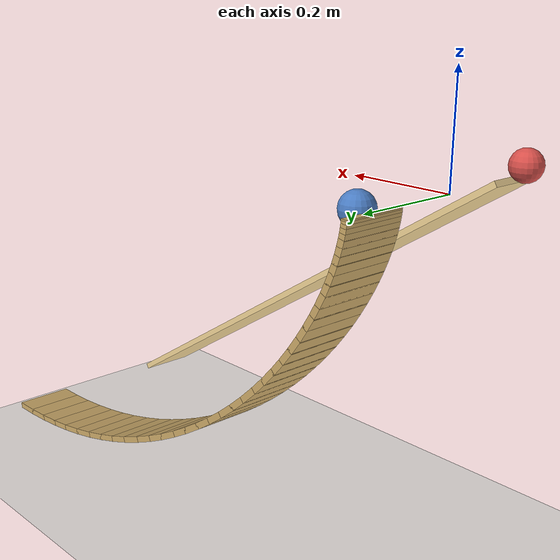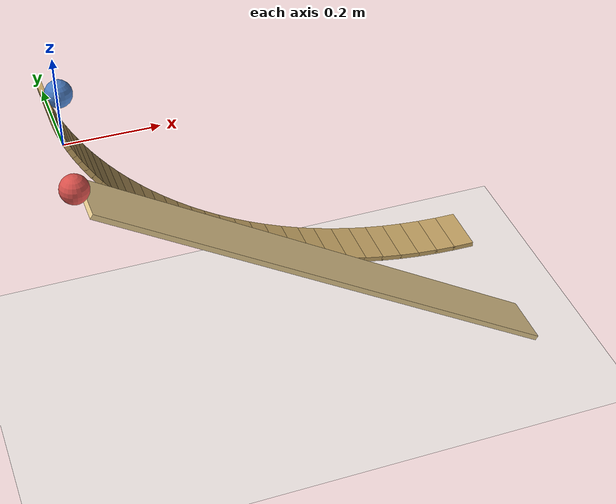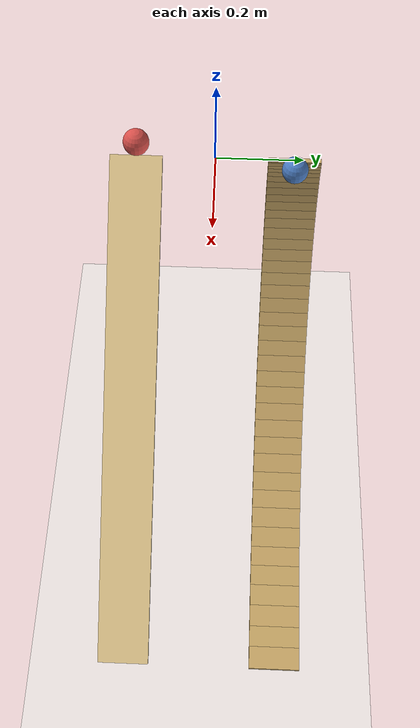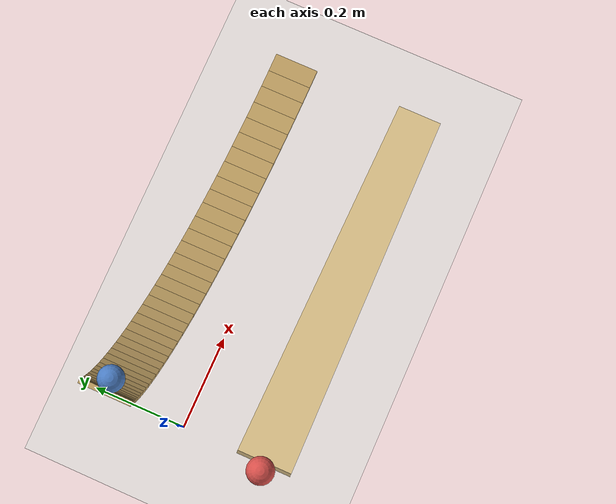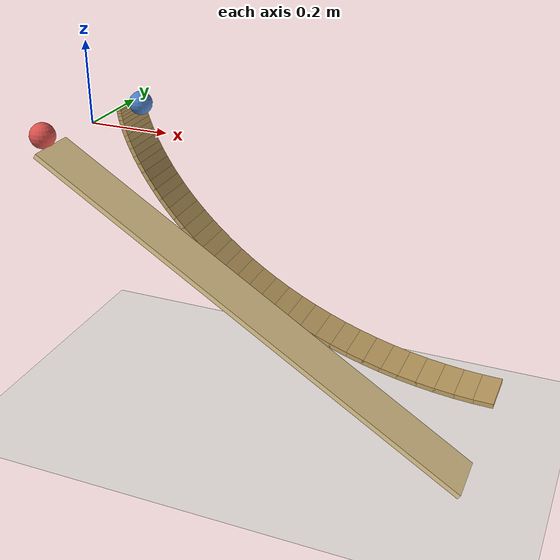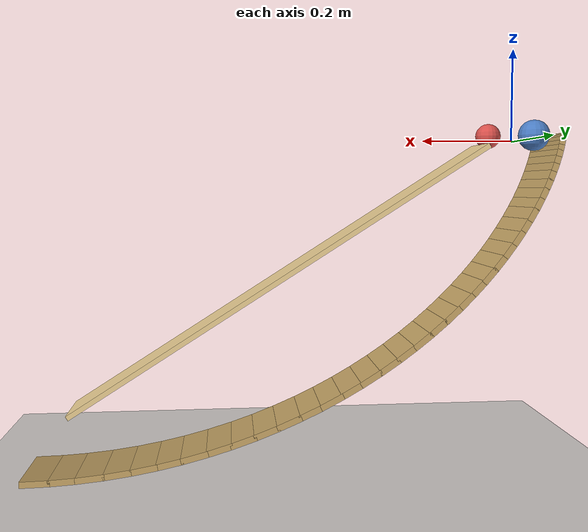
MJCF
<mujoco model="brachistochrone">
  <compiler angle="radian" coordinate="local" autolimits="true"/>
  <option timestep="0.0005" gravity="0 0 -9.81" integrator="implicitfast"
          impratio="3" cone="elliptic"/>

  <visual>
    <headlight diffuse="0 0 0" ambient="0.50 0.48 0.55" specular="0 0 0"/>
    <rgba haze="0.94 0.91 0.90 1"/>
    <global azimuth="120" elevation="-15" offwidth="1920" offheight="1080" fovy="38"/>
    <quality shadowsize="8192" offsamples="8"/>
    <map shadowclip="6" shadowscale="0.7"/>
  </visual>

  <asset>
    <texture type="skybox" builtin="flat"
             rgb1="0.74 0.68 0.86" rgb2="0.74 0.68 0.86"
             width="512" height="512" mark="none" markrgb="0 0 0"/>
    <material name="floor_mat"  rgba="0.94 0.91 0.90 1" specular="0" shininess="0"/>
    <material name="track_str"  rgba="0.93 0.82 0.58 1" specular="0.15" shininess="0.2"/>
    <material name="track_cyc"  rgba="0.78 0.65 0.40 1" specular="0.15" shininess="0.2"/>
    <material name="ball_red"   rgba="0.86 0.32 0.30 1" specular="0.55" shininess="0.7"/>
    <material name="ball_blue"  rgba="0.30 0.50 0.78 1" specular="0.55" shininess="0.7"/>
  </asset>

  <default>
    <!-- Low rolling friction so both balls approach the analytic
         (point-particle, frictionless) prediction. -->
    <geom friction="0.05 0.005 0.0001" solref="0.003 1" solimp="0.97 0.99 0.001"/>
  </default>

  <worldbody>
    <light pos="0 0 12" dir="-0.30 0.55 -1" directional="true" castshadow="true"
           diffuse="0.85 0.82 0.78" specular="0.15 0.15 0.15"/>
    <light pos="0 0 8" dir="0.40 -0.30 -1" directional="true" castshadow="false"
           diffuse="0.28 0.28 0.34" specular="0 0 0"/>

    <geom name="floor" type="plane" pos="0 0 -0.717" size="40 40 0.1"
          material="floor_mat"/>

    <!-- Straight ramp (lane y=-0.18). -->
    <geom type="box" pos="0.5 -0.18 -0.3183" euler="0 0.56691 0" size="0.5927 0.06 0.006" material="track_str"/>

    <!-- Cycloid track (lane y=0.18), 40 segments. -->
    <geom type="box" pos="0.0001 0.18 -0.0015" euler="0 1.52154 0" size="0.0013 0.06 0.006" material="track_cyc"/>
    <geom type="box" pos="0.0003 0.18 -0.0049" euler="0 1.48302 0" size="0.0024 0.06 0.006" material="track_cyc"/>
    <geom type="box" pos="0.0009 0.18 -0.0101" euler="0 1.44450 0" size="0.0034 0.06 0.006" material="track_cyc"/>
    <geom type="box" pos="0.0019 0.18 -0.0171" euler="0 1.40598 0" size="0.0044 0.06 0.006" material="track_cyc"/>
    <geom type="box" pos="0.0035 0.18 -0.0260" euler="0 1.36746 0" size="0.0054 0.06 0.006" material="track_cyc"/>
    <geom type="box" pos="0.0059 0.18 -0.0365" euler="0 1.32894 0" size="0.0065 0.06 0.006" material="track_cyc"/>
    <geom type="box" pos="0.0092 0.18 -0.0487" euler="0 1.29042 0" size="0.0075 0.06 0.006" material="track_cyc"/>
    <geom type="box" pos="0.0135 0.18 -0.0626" euler="0 1.25190 0" size="0.0085 0.06 0.006" material="track_cyc"/>
    <geom type="box" pos="0.0189 0.18 -0.0779" euler="0 1.21338 0" size="0.0094 0.06 0.006" material="track_cyc"/>
    <geom type="box" pos="0.0255 0.18 -0.0947" euler="0 1.17486 0" size="0.0104 0.06 0.006" material="track_cyc"/>
    <geom type="box" pos="0.0335 0.18 -0.1128" euler="0 1.13634 0" size="0.0114 0.06 0.006" material="track_cyc"/>
    <geom type="box" pos="0.0429 0.18 -0.1321" euler="0 1.09782 0" size="0.0123 0.06 0.006" material="track_cyc"/>
    <geom type="box" pos="0.0539 0.18 -0.1525" euler="0 1.05930 0" size="0.0132 0.06 0.006" material="track_cyc"/>
    <geom type="box" pos="0.0665 0.18 -0.1739" euler="0 1.02078 0" size="0.0141 0.06 0.006" material="track_cyc"/>
    <geom type="box" pos="0.0807 0.18 -0.1962" euler="0 0.98226 0" size="0.0150 0.06 0.006" material="track_cyc"/>
    <geom type="box" pos="0.0967 0.18 -0.2192" euler="0 0.94374 0" size="0.0158 0.06 0.006" material="track_cyc"/>
    <geom type="box" pos="0.1145 0.18 -0.2428" euler="0 0.90522 0" size="0.0167 0.06 0.006" material="track_cyc"/>
    <geom type="box" pos="0.1341 0.18 -0.2668" euler="0 0.86670 0" size="0.0175 0.06 0.006" material="track_cyc"/>
    <geom type="box" pos="0.1556 0.18 -0.2911" euler="0 0.82818 0" size="0.0182 0.06 0.006" material="track_cyc"/>
    <geom type="box" pos="0.1790 0.18 -0.3156" euler="0 0.78966 0" size="0.0190 0.06 0.006" material="track_cyc"/>
    <geom type="box" pos="0.2042 0.18 -0.3401" euler="0 0.75114 0" size="0.0197 0.06 0.006" material="track_cyc"/>
    <geom type="box" pos="0.2314 0.18 -0.3645" euler="0 0.71262 0" size="0.0204 0.06 0.006" material="track_cyc"/>
    <geom type="box" pos="0.2604 0.18 -0.3886" euler="0 0.67410 0" size="0.0211 0.06 0.006" material="track_cyc"/>
    <geom type="box" pos="0.2913 0.18 -0.4123" euler="0 0.63558 0" size="0.0217 0.06 0.006" material="track_cyc"/>
    <geom type="box" pos="0.3239 0.18 -0.4354" euler="0 0.59706 0" size="0.0223 0.06 0.006" material="track_cyc"/>
    <geom type="box" pos="0.3583 0.18 -0.4578" euler="0 0.55854 0" size="0.0229 0.06 0.006" material="track_cyc"/>
    <geom type="box" pos="0.3944 0.18 -0.4794" euler="0 0.52002 0" size="0.0234 0.06 0.006" material="track_cyc"/>
    <geom type="box" pos="0.4322 0.18 -0.5001" euler="0 0.48150 0" size="0.0239 0.06 0.006" material="track_cyc"/>
    <geom type="box" pos="0.4715 0.18 -0.5197" euler="0 0.44298 0" size="0.0244 0.06 0.006" material="track_cyc"/>
    <geom type="box" pos="0.5122 0.18 -0.5380" euler="0 0.40446 0" size="0.0248 0.06 0.006" material="track_cyc"/>
    <geom type="box" pos="0.5543 0.18 -0.5551" euler="0 0.36594 0" size="0.0252 0.06 0.006" material="track_cyc"/>
    <geom type="box" pos="0.5977 0.18 -0.5708" euler="0 0.32742 0" size="0.0255 0.06 0.006" material="track_cyc"/>
    <geom type="box" pos="0.6422 0.18 -0.5849" euler="0 0.28890 0" size="0.0259 0.06 0.006" material="track_cyc"/>
    <geom type="box" pos="0.6878 0.18 -0.5975" euler="0 0.25038 0" size="0.0261 0.06 0.006" material="track_cyc"/>
    <geom type="box" pos="0.7343 0.18 -0.6085" euler="0 0.21186 0" size="0.0264 0.06 0.006" material="track_cyc"/>
    <geom type="box" pos="0.7815 0.18 -0.6177" euler="0 0.17334 0" size="0.0266 0.06 0.006" material="track_cyc"/>
    <geom type="box" pos="0.8294 0.18 -0.6251" euler="0 0.13482 0" size="0.0267 0.06 0.006" material="track_cyc"/>
    <geom type="box" pos="0.8778 0.18 -0.6307" euler="0 0.09630 0" size="0.0268 0.06 0.006" material="track_cyc"/>
    <geom type="box" pos="0.9265 0.18 -0.6345" euler="0 0.05778 0" size="0.0269 0.06 0.006" material="track_cyc"/>
    <geom type="box" pos="0.9755 0.18 -0.6364" euler="0 0.01926 0" size="0.0270 0.06 0.006" material="track_cyc"/>

    <!-- Red ball on the straight ramp. -->
    <body name="ball_straight" pos="-0.0161 -0.18 0.0253">
      <freejoint/>
      <geom type="sphere" size="0.03" mass="0.04"
            material="ball_red"/>
    </body>

    <!-- Blue ball on the cycloid track. -->
    <body name="ball_cycloid" pos="0.0300 0.18 0.0003">
      <freejoint/>
      <geom type="sphere" size="0.03" mass="0.04"
            material="ball_blue"/>
    </body>

    <!-- Camera: 3/4 view from front-left so both lanes are visible distinctly. -->
    <camera name="cam" pos="-0.55 -1.25 0.10" fovy="40"
            xyaxes="0.917 -0.399 0   0.105 0.241 0.965"/>
  </worldbody>
</mujoco>
